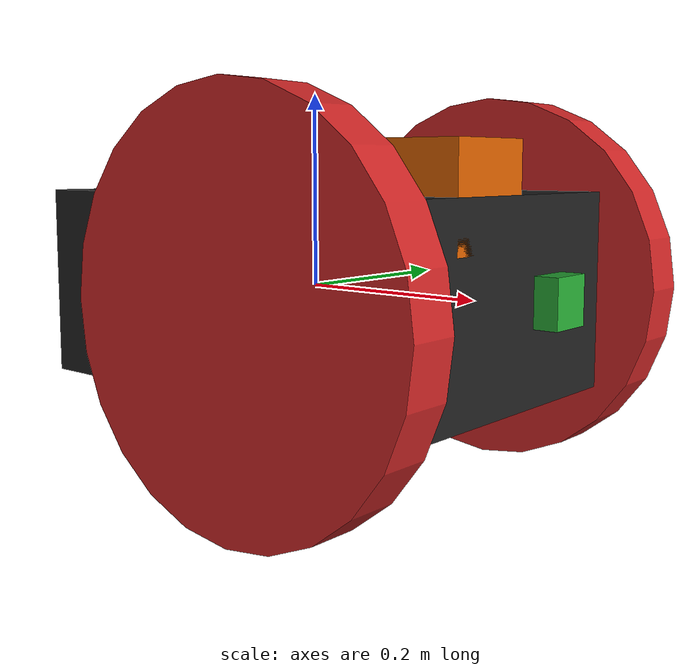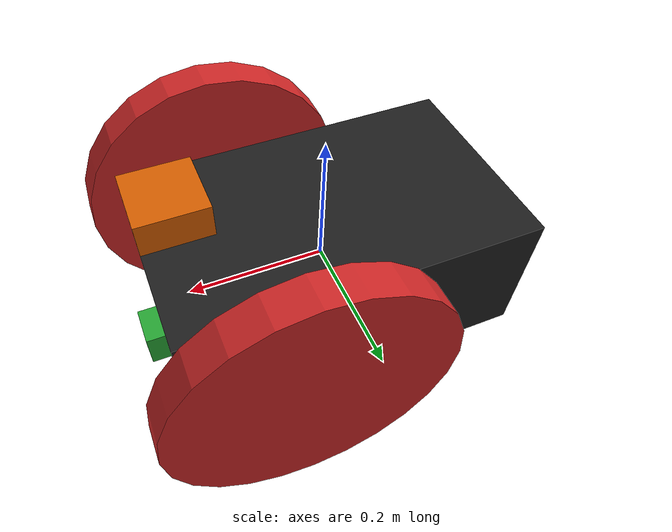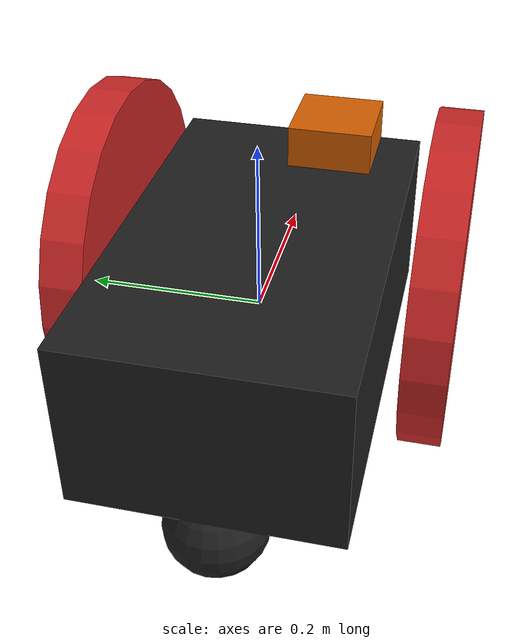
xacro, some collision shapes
<?xml version='1.0'?>

<robot name="udacity_bot" xmlns:xacro="http://www.ros.org/wiki/xacro">

  <xacro:include filename="$(find udacity_bot)/urdf/udacity_bot.gazebo" />

  <link name="robot_footprint"></link>

  <joint name="robot_footprint_joint" type="fixed">
    <origin xyz="0 0 0" rpy="0 0 0" />
    <parent link="robot_footprint"/>
    <child link="chassis" />
  </joint>

  <link name='chassis'>
    <pose>0 0 0.1 0 0 0</pose>

    <inertial>
      <mass value="7.0"/>
      <origin xyz="0.0 0 0" rpy=" 0 0 0"/>
      <inertia
          ixx="0.1" ixy="0" ixz="0"
          iyy="0.1" iyz="0"
          izz="0.1"
      />
    </inertial>

    <collision name='collision'>
      <origin xyz="0 0 0" rpy=" 0 0 0"/>
      <geometry>
        <box size=".5 .3 .2"/>
      </geometry>
    </collision>

    <visual name='chassis_visual'>
      <origin xyz="0 0 0" rpy=" 0 0 0"/>
      <geometry>
        <box size=".5 .3 .2"/>
      </geometry>
    </visual>

    <collision name='back_caster_collision'>
      <origin xyz="-0.2 0 -0.15" rpy=" 0 0 0"/>
      <geometry>
        <sphere radius="0.06"/>
      </geometry>
      <surface>
        <friction>
          <ode>
            <mu>0</mu>
            <mu2>0</mu2>
            <slip1>1.0</slip1>
            <slip2>1.0</slip2>
          </ode>
        </friction>
      </surface>
    </collision>

    <visual name='back_caster_visual'>
      <origin xyz="-0.2 0 -0.15" rpy=" 0 0 0"/>
      <geometry>
        <sphere radius="0.06"/>
      </geometry>
    </visual>

  </link>

  <link name='left_wheel'>

    <inertial>
      <mass value="1.0"/>
      <origin xyz="0 0 0" rpy=" 0 1.5707 1.5707"/>
      <inertia
          ixx="0.1" ixy="0" ixz="0"
          iyy="0.1" iyz="0"
          izz="0.1"
      />
    </inertial>

    <collision name='collision_left'>
      <origin xyz="0 0 0" rpy=" 0 1.5707 1.5707"/>
      <geometry>
        <cylinder radius="0.2" length="0.05"/>
      </geometry>
    </collision>

    <visual name='left_wheel_visual'>
      <origin xyz="0 0 0" rpy=" 0 1.5707 1.5707"/>
      <geometry>
        <cylinder radius="0.2" length="0.05"/>
      </geometry>
    </visual>

  </link>

  <link name='right_wheel'>

    <inertial>
      <mass value="1.0"/>
      <origin xyz="0 0 0" rpy=" 0 1.5707 1.5707"/>
      <inertia
          ixx="0.1" ixy="0" ixz="0"
          iyy="0.1" iyz="0"
          izz="0.1"
      />
    </inertial>

    <collision name='collision_right'>
      <origin xyz="0 0 0" rpy=" 0 1.5707 1.5707"/>
      <geometry>
        <cylinder radius="0.2" length="0.05"/>
      </geometry>
    </collision>

    <visual name='right_wheel_visual'>
      <origin xyz="0 0 0" rpy=" 0 1.5707 1.5707"/>
      <geometry>
        <cylinder radius="0.2" length="0.05"/>
      </geometry>
    </visual>

  </link>

  <joint type="continuous" name="left_wheel_hinge">
    <origin xyz="0.1 0.2 0" rpy="0 0 0"/>
    <child link="left_wheel"/>
    <parent link="chassis"/>
    <axis xyz="0 1 0" rpy="0 0 0"/>
    <limit effort="10000" velocity="1000"/>
    <joint_properties damping="1.0" friction="1.0"/>
  </joint>

  <joint type="continuous" name="right_wheel_hinge">
    <origin xyz="0.1 -0.2 0" rpy="0 0 0"/>
    <child link="right_wheel"/>
    <parent link="chassis"/>
    <axis xyz="0 1 0" rpy="0 0 0"/>
    <limit effort="10000" velocity="1000"/>
    <joint_properties damping="1.0" friction="1.0"/>
  </joint>

  <link name="camera">

    <inertial>
      <mass value="0.1"/>
      <inertia
        ixx="1e-6" ixy="0" ixz="0"
        iyy="1e-6" iyz="0"
        izz="1e-6"
      />
    </inertial>

    <collision name="collision_camera">
      <origin xyz="0 0 0" rpy="0 0 0" />
      <geometry>
        <box size="0.05 0.05 0.05"/>
      </geometry>
    </collision>

    <visual name="camera_visual">
      <origin xyz="0 0 0" rpy="0 0 0"/>
      <geometry>
        <box size="0.05 0.05 0.05"/>
      </geometry>
    </visual>

  </link>

  <joint type="fixed" name="camera_joint">
    <origin xyz="0.25 0.05 0" rpy="0 0 0"/>
    <parent link="chassis" />
    <child link="camera" />

  </joint>

  <link name="hokuyo">

    <inertial>
      <mass value="0.1"/>
      <inertia
        ixx="1e-6" ixy="0" ixz="0"
        iyy="1e-6" iyz="0"
        izz="1e-6"
      />
    </inertial>

    <collision name="hokuyo_collision">
      <origin xyz="0 0 0" rpy="0 0 0"/>
      <geometry>
	<box size="0.1 0.1 0.1"/>
      </geometry>
    </collision>

    <visual name="hokuyo_visual">
      <origin xyz="0 0 0" rpy="0 0 0"/>
      <geometry>
        <mesh filename="/home/mihird/catkin_ws/src/udacity_bot/meshes/hokuyo.dae" />
      </geometry>
    </visual>

  </link>

  <joint type="fixed" name="hokuyo_joint">
    <origin xyz="0.2 -0.05 0.1" rpy="0 0 0"/>
    <parent link="chassis" />
    <child link="hokuyo" />
  </joint>

</robot>
